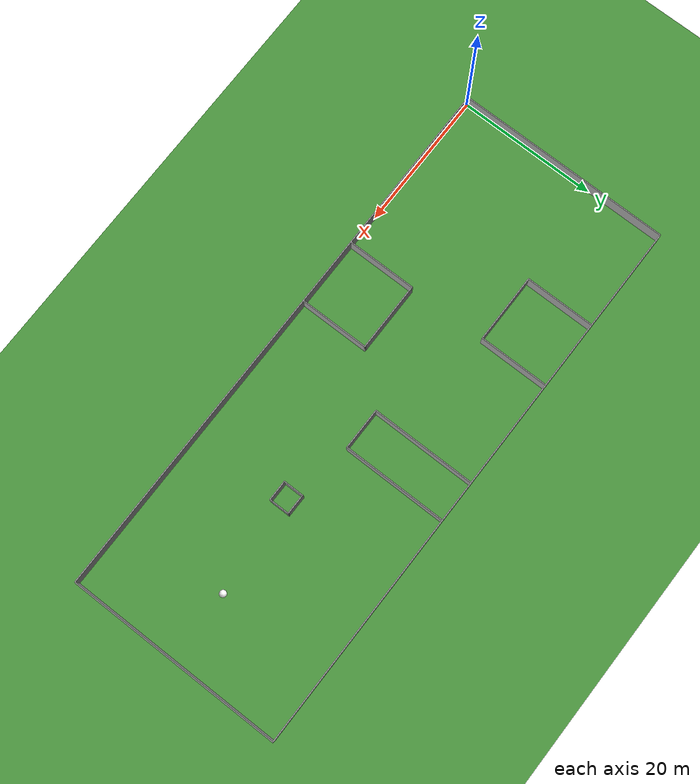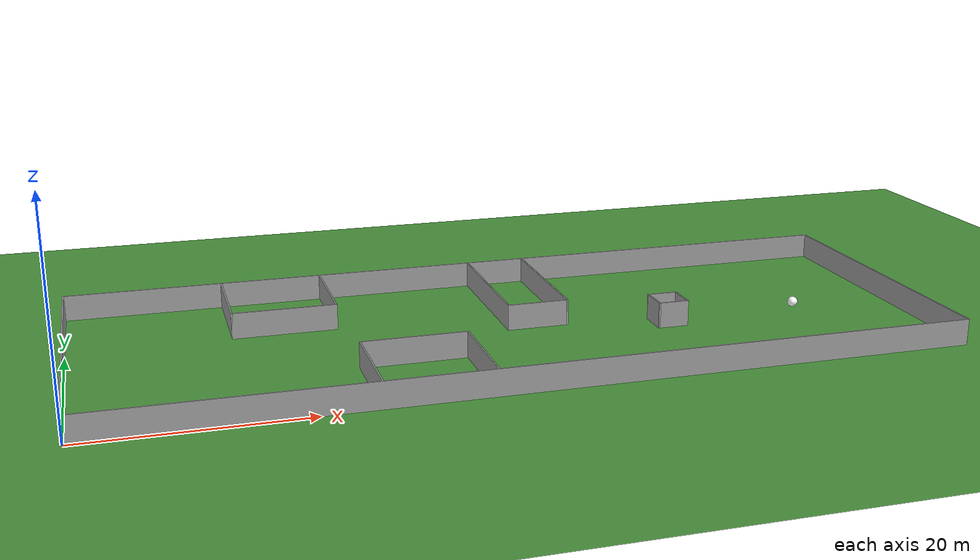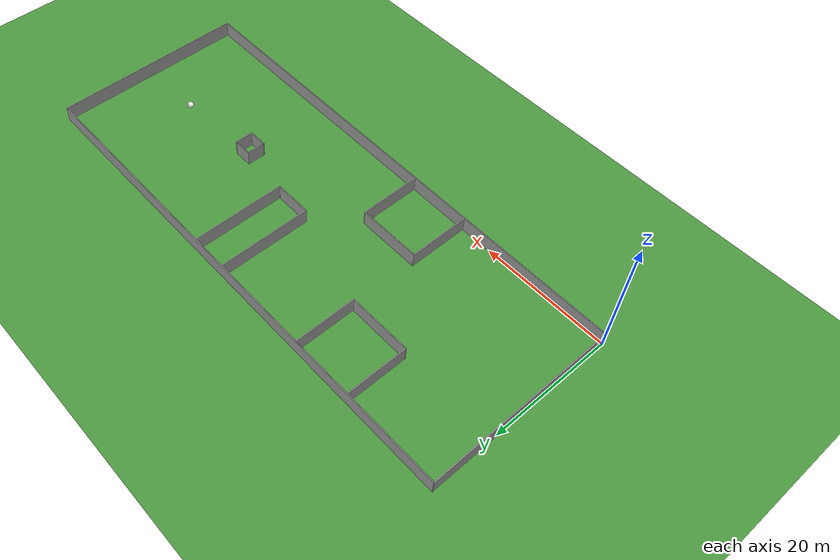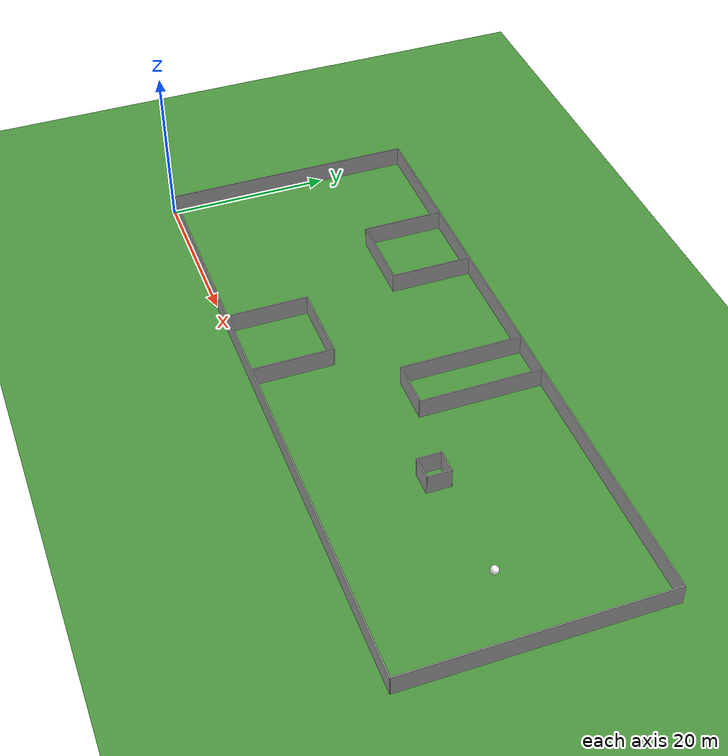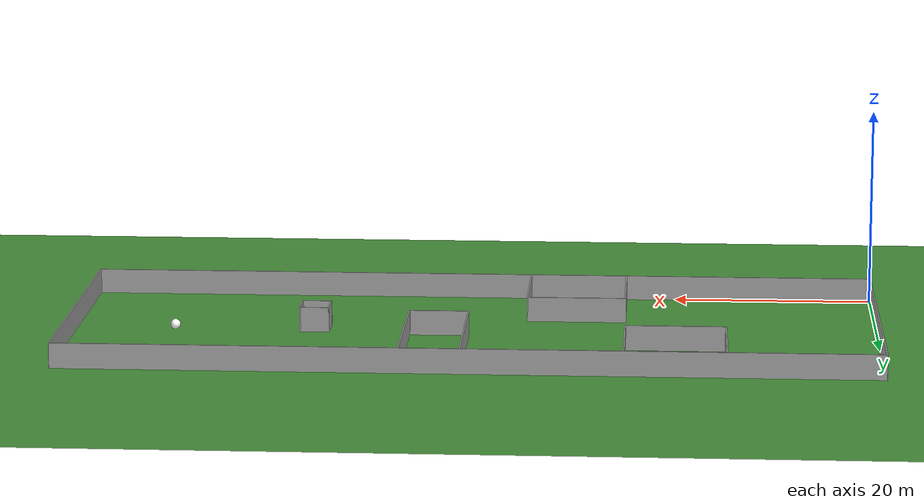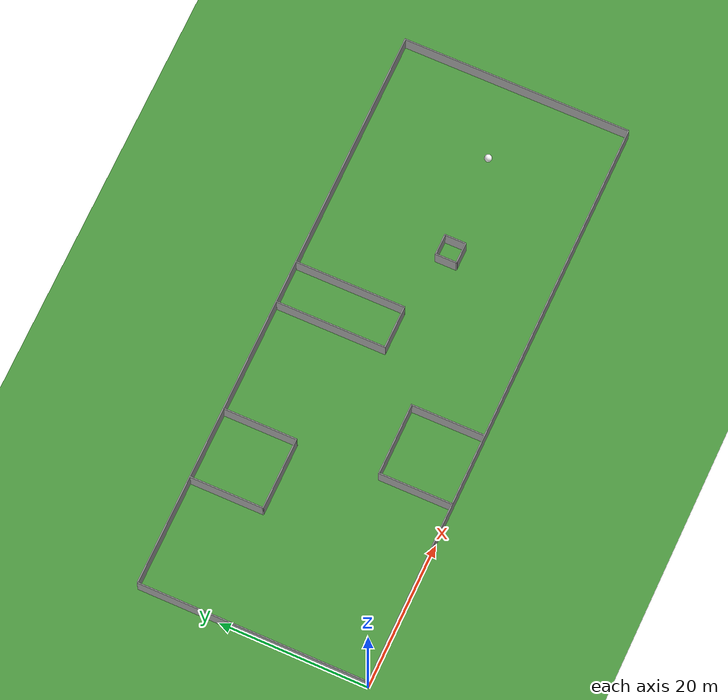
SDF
<sdf version="1.6">
 <world name="default">
  <scene>
   <sky><clouds><speed>12</speed></clouds></sky>
   <ambient>0.4 0.4 0.4 1</ambient>
   <background>0.7 0.7 0.7 1</background>
   <shadows>1</shadows>
  </scene>
  <light name="sun" type="directional">
   <pose>0 0 10 0 -0 0</pose>
   <diffuse>0.8 0.8 0.8 1</diffuse>
   <specular>0.2 0.2 0.2 1</specular>
   <attenuation>
    <range>1000</range>
    <constant>0.9</constant>
    <linear>0.01</linear>
    <quadratic>0.001</quadratic>
   </attenuation>
   <direction>-0.5 0.1 -0.9</direction>
  </light>
  <model name="ground_plane">
   <static>1</static>
   <link name="link">
    <collision name="collision">
     <geometry><plane><normal>0 0 1</normal><size>100 100</size></plane></geometry>
     <surface>
      <contact><collide_bitmask>65535</collide_bitmask></contact>
      <friction><ode><mu>100</mu><mu2>50</mu2></ode></friction>
     </surface>
    </collision>
    <visual name="visual">
     <pose>40 30 0 0 -0 0</pose>
     <cast_shadows>0</cast_shadows>
     <geometry><plane><normal>0 0 1</normal><size>100 100</size></plane></geometry>
     <material>
      <script><uri>file://media/materials/scripts/gazebo.material</uri><name>Gazebo/Grass</name></script>
     </material>
    </visual>
   </link>
  </model>
  <physics name="default_physics" default="0" type="ode">
   <ode>
    <solver>
     <type>quick</type>
     <iters>50</iters>
     <sor>1</sor>
     <use_dynamic_moi_rescaling>0</use_dynamic_moi_rescaling>
    </solver>
    <constraints>
     <cfm>0</cfm>
     <erp>0.2</erp>
     <contact_max_correcting_vel>100</contact_max_correcting_vel>
     <contact_surface_layer>0.001</contact_surface_layer>
    </constraints>
   </ode>
   <max_step_size>0.004</max_step_size>
   <real_time_factor>1</real_time_factor>
   <real_time_update_rate>250</real_time_update_rate>
  </physics>
  <gravity>0 0 -9.8066</gravity>
  <magnetic_field>6e-06 2.3e-05 -4.2e-05</magnetic_field>
  <atmosphere type="adiabatic"/>
  <spherical_coordinates>
   <surface_model>EARTH_WGS84</surface_model>
   <latitude_deg>0</latitude_deg>
   <longitude_deg>0</longitude_deg>
   <elevation>0</elevation>
   <heading_deg>0</heading_deg>
  </spherical_coordinates>
  <model name="wall_1">
   <pose>-0.015276 15.5391 0 0 -0 0</pose>
   <link name="Wall_3">
    <collision name="Wall_3_Collision">
     <geometry><box><size>31 0.15 2.5</size></box></geometry>
     <pose>0 0 1.25 0 -0 0</pose>
    </collision>
    <visual name="Wall_3_Visual">
     <pose>0 0 1.25 0 -0 0</pose>
     <geometry><box><size>31 0.15 2.5</size></box></geometry>
     <material>
      <script><uri>file://media/materials/scripts/gazebo.material</uri><name>Gazebo/Grey</name></script>
      <ambient>1 1 1 1</ambient>
     </material>
    </visual>
    <pose>0 0 0 0 0 -1.5708</pose>
   </link>
   <static>1</static>
  </model>
  <model name="wall_2">
   <pose>39.9518 0.045651 0 0 -0 0</pose>
   <link name="Wall_6">
    <collision name="Wall_6_Collision">
     <geometry><box><size>80 0.15 2.5</size></box></geometry>
     <pose>0 0 1.25 0 -0 0</pose>
    </collision>
    <visual name="Wall_6_Visual">
     <pose>0 0 1.25 0 -0 0</pose>
     <geometry><box><size>80 0.15 2.5</size></box></geometry>
     <material>
      <script><uri>file://media/materials/scripts/gazebo.material</uri><name>Gazebo/Grey</name></script>
      <ambient>1 1 1 1</ambient>
     </material>
    </visual>
   </link>
   <static>1</static>
  </model>
  <model name="wall_2_clone">
   <pose>39.9811 30.9866 0 0 -0 0</pose>
   <link name="Wall_6">
    <collision name="Wall_6_Collision">
     <geometry><box><size>80 0.15 2.5</size></box></geometry>
     <pose>0 0 1.25 0 -0 0</pose>
    </collision>
    <visual name="Wall_6_Visual">
     <pose>0 0 1.25 0 -0 0</pose>
     <geometry><box><size>80 0.15 2.5</size></box></geometry>
     <material>
      <script><uri>file://media/materials/scripts/gazebo.material</uri><name>Gazebo/Grey</name></script>
      <ambient>1 1 1 1</ambient>
     </material>
    </visual>
   </link>
   <static>1</static>
  </model>
  <model name="wall_1_clone">
   <pose>79.9514 15.5551 0 0 -0 0</pose>
   <link name="Wall_3">
    <collision name="Wall_3_Collision">
     <geometry><box><size>31 0.15 2.5</size></box></geometry>
     <pose>0 0 1.25 0 -0 0</pose>
    </collision>
    <visual name="Wall_3_Visual">
     <pose>0 0 1.25 0 -0 0</pose>
     <geometry><box><size>31 0.15 2.5</size></box></geometry>
     <material>
      <script><uri>file://media/materials/scripts/gazebo.material</uri><name>Gazebo/Grey</name></script>
      <ambient>1 1 1 1</ambient>
     </material>
    </visual>
    <pose>0 0 0 0 0 -1.5708</pose>
   </link>
   <static>1</static>
  </model>
  <model name="obs_1">
   <pose>20 25.9619 0 0 -0 0</pose>
   <link name="Wall_0">
    <collision name="Wall_0_Collision">
     <geometry><box><size>10 0.15 2.5</size></box></geometry>
     <pose>0 0 1.25 0 -0 0</pose>
    </collision>
    <visual name="Wall_0_Visual">
     <pose>0 0 1.25 0 -0 0</pose>
     <geometry><box><size>10 0.15 2.5</size></box></geometry>
     <material>
      <script><uri>file://media/materials/scripts/gazebo.material</uri><name>Gazebo/Grey</name></script>
      <ambient>1 1 1 1</ambient>
     </material>
    </visual>
    <pose>-4.925 0 0 0 -0 1.5708</pose>
   </link>
   <link name="Wall_2">
    <collision name="Wall_2_Collision">
     <geometry><box><size>10 0.15 2.5</size></box></geometry>
     <pose>0 0 1.25 0 -0 0</pose>
    </collision>
    <visual name="Wall_2_Visual">
     <pose>0 0 1.25 0 -0 0</pose>
     <geometry><box><size>10 0.15 2.5</size></box></geometry>
     <material>
      <script><uri>file://media/materials/scripts/gazebo.material</uri><name>Gazebo/Grey</name></script>
      <ambient>1 1 1 1</ambient>
     </material>
    </visual>
    <pose>0 -4.925 0 0 -0 0</pose>
   </link>
   <link name="Wall_3">
    <collision name="Wall_3_Collision">
     <geometry><box><size>10 0.15 2.5</size></box></geometry>
     <pose>0 0 1.25 0 -0 0</pose>
    </collision>
    <visual name="Wall_3_Visual">
     <pose>0 0 1.25 0 -0 0</pose>
     <geometry><box><size>10 0.15 2.5</size></box></geometry>
     <material>
      <script><uri>file://media/materials/scripts/gazebo.material</uri><name>Gazebo/Grey</name></script>
      <ambient>1 1 1 1</ambient>
     </material>
    </visual>
    <pose>4.925 0 0 0 -0 1.5708</pose>
   </link>
   <static>1</static>
  </model>
  <model name="obs_1_clone">
   <pose>30 5 0 0 0 -3.14</pose>
   <link name="Wall_0">
    <collision name="Wall_0_Collision">
     <geometry><box><size>10 0.15 2.5</size></box></geometry>
     <pose>0 0 1.25 0 -0 0</pose>
    </collision>
    <visual name="Wall_0_Visual">
     <pose>0 0 1.25 0 -0 0</pose>
     <geometry><box><size>10 0.15 2.5</size></box></geometry>
     <material>
      <script><uri>file://media/materials/scripts/gazebo.material</uri><name>Gazebo/Grey</name></script>
      <ambient>1 1 1 1</ambient>
     </material>
    </visual>
    <pose>-4.925 0 0 0 -0 1.5708</pose>
   </link>
   <link name="Wall_2">
    <collision name="Wall_2_Collision">
     <geometry><box><size>10 0.15 2.5</size></box></geometry>
     <pose>0 0 1.25 0 -0 0</pose>
    </collision>
    <visual name="Wall_2_Visual">
     <pose>0 0 1.25 0 -0 0</pose>
     <geometry><box><size>10 0.15 2.5</size></box></geometry>
     <material>
      <script><uri>file://media/materials/scripts/gazebo.material</uri><name>Gazebo/Grey</name></script>
      <ambient>1 1 1 1</ambient>
     </material>
    </visual>
    <pose>0 -4.925 0 0 -0 0</pose>
   </link>
   <link name="Wall_3">
    <collision name="Wall_3_Collision">
     <geometry><box><size>10 0.15 2.5</size></box></geometry>
     <pose>0 0 1.25 0 -0 0</pose>
    </collision>
    <visual name="Wall_3_Visual">
     <pose>0 0 1.25 0 -0 0</pose>
     <geometry><box><size>10 0.15 2.5</size></box></geometry>
     <material>
      <script><uri>file://media/materials/scripts/gazebo.material</uri><name>Gazebo/Grey</name></script>
      <ambient>1 1 1 1</ambient>
     </material>
    </visual>
    <pose>4.925 0 0 0 -0 1.5708</pose>
   </link>
   <static>1</static>
  </model>
  <model name="obs_3">
   <pose>43.5 23.5 0 0 -0 0</pose>
   <link name="Wall_13">
    <collision name="Wall_13_Collision">
     <geometry><box><size>6 0.15 2.5</size></box></geometry>
     <pose>0 0 1.25 0 -0 0</pose>
    </collision>
    <visual name="Wall_13_Visual">
     <pose>0 0 1.25 0 -0 0</pose>
     <geometry><box><size>6 0.15 2.5</size></box></geometry>
     <material>
      <script><uri>file://media/materials/scripts/gazebo.material</uri><name>Gazebo/Grey</name></script>
      <ambient>1 1 1 1</ambient>
     </material>
    </visual>
    <pose>-0.021141 -7.42402 0 0 -0 0</pose>
   </link>
   <link name="Wall_14">
    <collision name="Wall_14_Collision">
     <geometry><box><size>0.16 0.15 2.5</size></box></geometry>
     <pose>0 0 1.25 0 -0 0</pose>
    </collision>
    <visual name="Wall_14_Visual">
     <pose>0 0 1.25 0 -0 0</pose>
     <geometry><box><size>0.16 0.15 2.5</size></box></geometry>
     <material>
      <script><uri>file://media/materials/scripts/gazebo.material</uri><name>Gazebo/Grey</name></script>
      <ambient>1 1 1 1</ambient>
     </material>
    </visual>
    <pose>2.90886 -7.42402 0 0 -0 0</pose>
   </link>
   <link name="Wall_17">
    <collision name="Wall_17_Collision">
     <geometry><box><size>15 0.15 2.5</size></box></geometry>
     <pose>0 0 1.25 0 -0 0</pose>
    </collision>
    <visual name="Wall_17_Visual">
     <pose>0 0 1.25 0 -0 0</pose>
     <geometry><box><size>15 0.15 2.5</size></box></geometry>
     <material>
      <script><uri>file://media/materials/scripts/gazebo.material</uri><name>Gazebo/Grey</name></script>
      <ambient>1 1 1 1</ambient>
     </material>
    </visual>
    <pose>2.94614 -0.00098 0 0 0 -1.5708</pose>
   </link>
   <link name="Wall_5">
    <collision name="Wall_5_Collision">
     <geometry><box><size>15 0.15 2.5</size></box></geometry>
     <pose>0 0 1.25 0 -0 0</pose>
    </collision>
    <visual name="Wall_5_Visual">
     <pose>0 0 1.25 0 -0 0</pose>
     <geometry><box><size>15 0.15 2.5</size></box></geometry>
     <material>
      <script><uri>file://media/materials/scripts/gazebo.material</uri><name>Gazebo/Grey</name></script>
      <ambient>1 1 1 1</ambient>
     </material>
    </visual>
    <pose>-2.94614 0.000979 0 0 0 -1.5708</pose>
   </link>
   <static>1</static>
  </model>
  <model name="obs_4">
   <pose>56 14 0 0 -0 0</pose>
   <link name="Wall_23">
    <collision name="Wall_23_Collision">
     <geometry><box><size>3 0.15 2.5</size></box></geometry>
     <pose>0 0 1.25 0 -0 0</pose>
    </collision>
    <visual name="Wall_23_Visual">
     <pose>0 0 1.25 0 -0 0</pose>
     <geometry><box><size>3 0.15 2.5</size></box></geometry>
     <material>
      <script><uri>file://media/materials/scripts/gazebo.material</uri><name>Gazebo/Grey</name></script>
      <ambient>1 1 1 1</ambient>
     </material>
    </visual>
    <pose>0 1.425 0 0 -0 3.14159</pose>
   </link>
   <link name="Wall_26">
    <collision name="Wall_26_Collision">
     <geometry><box><size>3 0.15 2.5</size></box></geometry>
     <pose>0 0 1.25 0 -0 0</pose>
    </collision>
    <visual name="Wall_26_Visual">
     <pose>0 0 1.25 0 -0 0</pose>
     <geometry><box><size>3 0.15 2.5</size></box></geometry>
     <material>
      <script><uri>file://media/materials/scripts/gazebo.material</uri><name>Gazebo/Grey</name></script>
      <ambient>1 1 1 1</ambient>
     </material>
    </visual>
    <pose>1.425 0 0 0 0 -1.5708</pose>
   </link>
   <link name="Wall_27">
    <collision name="Wall_27_Collision">
     <geometry><box><size>3 0.15 2.5</size></box></geometry>
     <pose>0 0 1.25 0 -0 0</pose>
    </collision>
    <visual name="Wall_27_Visual">
     <pose>0 0 1.25 0 -0 0</pose>
     <geometry><box><size>3 0.15 2.5</size></box></geometry>
     <material>
      <script><uri>file://media/materials/scripts/gazebo.material</uri><name>Gazebo/Grey</name></script>
      <ambient>1 1 1 1</ambient>
     </material>
    </visual>
    <pose>0 -1.425 0 0 -0 3.14159</pose>
   </link>
   <link name="Wall_28">
    <collision name="Wall_28_Collision">
     <geometry><box><size>3 0.15 2.5</size></box></geometry>
     <pose>0 0 1.25 0 -0 0</pose>
    </collision>
    <visual name="Wall_28_Visual">
     <pose>0 0 1.25 0 -0 0</pose>
     <geometry><box><size>3 0.15 2.5</size></box></geometry>
     <material>
      <script><uri>file://media/materials/scripts/gazebo.material</uri><name>Gazebo/Grey</name></script>
      <ambient>1 1 1 1</ambient>
     </material>
    </visual>
    <pose>-1.425 0 0 0 -0 1.5708</pose>
   </link>
   <static>1</static>
  </model>
  <model name="target_ball">
   <link name="sphere">
    <inertial>
     <inertia><ixx>1</ixx><ixy>0</ixy><ixz>0</ixz><iyy>1</iyy><iyz>0</iyz><izz>1</izz></inertia>
     <mass>1</mass>
    </inertial>
    <visual name="visual">
     <geometry><sphere><radius>0.5</radius></sphere></geometry>
     <material>
      <script>
       <uri>model://textured_shapes/materials/scripts</uri>
       <uri>model://textured_shapes/materials/textures</uri>
       <name>TexturedShape/Squares</name>
      </script>
      <ambient>1 1 1 1</ambient>
      <diffuse>1 1 1 1</diffuse>
      <specular>0 0 0 1</specular>
      <emissive>0 0 0 1</emissive>
     </material>
    </visual>
    <collision name="collision">
     <geometry><sphere><radius>0.5</radius></sphere></geometry>
     <surface>
      <friction>
       <ode><mu>1</mu><mu2>1</mu2><fdir1>0 0 0</fdir1><slip1>0</slip1><slip2>0</slip2></ode>
       <torsional>
        <coefficient>1</coefficient>
        <patch_radius>0</patch_radius>
        <surface_radius>0</surface_radius>
        <use_patch_radius>1</use_patch_radius>
        <ode><slip>0</slip></ode>
       </torsional>
      </friction>
      <bounce><restitution_coefficient>0</restitution_coefficient><threshold>1e+06</threshold></bounce>
      <contact>
       <collide_without_contact>0</collide_without_contact>
       <collide_without_contact_bitmask>1</collide_without_contact_bitmask>
       <collide_bitmask>1</collide_bitmask>
       <ode>
        <soft_cfm>0</soft_cfm>
        <soft_erp>0.2</soft_erp>
        <kp>1e+13</kp>
        <kd>1</kd>
        <max_vel>0.01</max_vel>
        <min_depth>0</min_depth>
       </ode>
       <bullet>
        <split_impulse>1</split_impulse>
        <split_impulse_penetration_threshold>-0.01</split_impulse_penetration_threshold>
        <soft_cfm>0</soft_cfm>
        <soft_erp>0.2</soft_erp>
        <kp>1e+13</kp>
        <kd>1</kd>
       </bullet>
      </contact>
     </surface>
    </collision>
   </link>
   <static>0</static>
   <pose>70 15 0.5 0 -0 0</pose>
  </model>
 </world>
</sdf>
